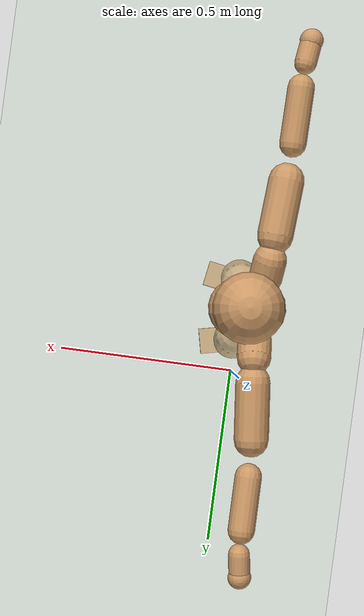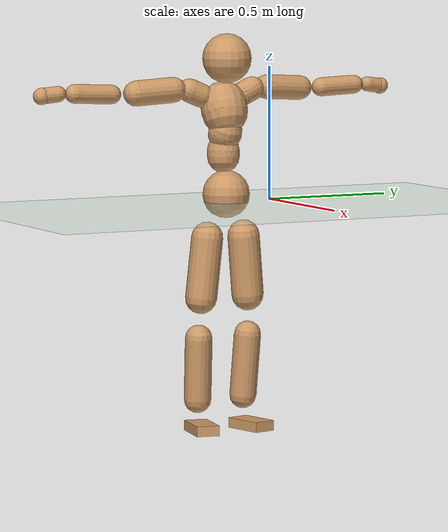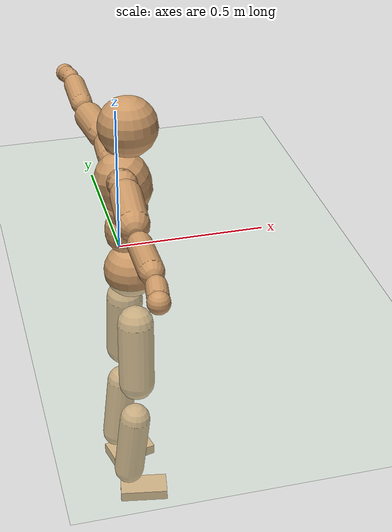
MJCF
<mujoco model="humanoid">
  <compiler coordinate="local"/>
  <default>
    <joint damping="0.0" armature="0.01" stiffness="0.0" limited="true"/>
    <geom conaffinity="1" condim="3" contype="7" margin="0.001" rgba="0.8 0.6 .4 1"/>
  </default>
  <asset>
    <texture type="skybox" builtin="gradient" rgb1=".4 .5 .6" rgb2="0 0 0" width="100" height="100"/>
    <texture builtin="flat" height="1278" mark="cross" markrgb="1 1 1" name="texgeom" random="0.01" rgb1="0.8 0.6 0.4" rgb2="0.8 0.6 0.4" type="cube" width="127"/>
    <texture builtin="checker" height="100" name="texplane" rgb1="0 0 0" rgb2="0.8 0.8 0.8" type="2d" width="100"/>
    <material name="MatPlane" reflectance="0.5" shininess="1" specular="1" texrepeat="60 60" texture="texplane"/>
    <material name="geom" texture="texgeom" texuniform="true"/>
  </asset>
  <worldbody>
    <light cutoff="100" diffuse="1 1 1" dir="-0 0 -1.3" directional="true" exponent="1" pos="0 0 1.3" specular=".1 .1 .1"/>
    <geom conaffinity="1" condim="3" name="floor" pos="0 0 0" rgba="0.8 0.9 0.8 1" size="100 100 .2" type="plane" material="MatPlane"/>
    <body name="Pelvis" pos="0.001 -0.1838 0.0271">
      <freejoint name="Pelvis"/>
      <geom type="sphere" contype="1" conaffinity="1" density="500" size="0.0892" pos="0.0000 0.0000 0.0000" name="Pelvis"/>
      <body name="L_Hip" pos="-0.0079 0.072 -0.0861">
        <joint name="L_Hip_x" type="hinge" pos="0 0 0" axis="1 0 0" stiffness="800" damping="80" armature="0.02" range="-180.0000 180.0000"/>
        <joint name="L_Hip_y" type="hinge" pos="0 0 0" axis="0 1 0" stiffness="800" damping="80" armature="0.02" range="-180.0000 180.0000"/>
        <joint name="L_Hip_z" type="hinge" pos="0 0 0" axis="0 0 1" stiffness="800" damping="80" armature="0.02" range="-180.0000 180.0000"/>
        <geom type="capsule" contype="1" conaffinity="1" density="500" fromto="-0.0013 0.0065 -0.0750 -0.0051 0.0260 -0.2999" size="0.0604" name="L_Hip"/>
        <body name="L_Knee" pos="-0.0064 0.0325 -0.3748">
          <joint name="L_Knee_x" type="hinge" pos="0 0 0" axis="1 0 0" stiffness="800" damping="80" armature="0.02" range="-180.0000 180.0000"/>
          <joint name="L_Knee_y" type="hinge" pos="0 0 0" axis="0 1 0" stiffness="800" damping="80" armature="0.02" range="-180.0000 180.0000"/>
          <joint name="L_Knee_z" type="hinge" pos="0 0 0" axis="0 0 1" stiffness="800" damping="80" armature="0.02" range="-180.0000 180.0000"/>
          <geom type="capsule" contype="1" conaffinity="1" density="500" fromto="-0.0085 -0.0019 -0.0783 -0.0339 -0.0076 -0.3132" size="0.0509" name="L_Knee"/>
          <body name="L_Ankle" pos="-0.0423 -0.0095 -0.3915">
            <joint name="L_Ankle_x" type="hinge" pos="0 0 0" axis="1 0 0" stiffness="800" damping="80" armature="0.02" range="-180.0000 180.0000"/>
            <joint name="L_Ankle_y" type="hinge" pos="0 0 0" axis="0 1 0" stiffness="800" damping="80" armature="0.02" range="-180.0000 180.0000"/>
            <joint name="L_Ankle_z" type="hinge" pos="0 0 0" axis="0 0 1" stiffness="800" damping="80" armature="0.02" range="-180.0000 180.0000"/>
            <geom type="box" contype="1" conaffinity="1" density="500" pos="0.0559 0.0124 -0.0280" size="0.0805 0.0441 0.0191" quat="0.9940 0.0000 0.0000 0.1090" name="L_Ankle"/>
            <body name="L_Toe" pos="0.1118 0.0248 -0.056">
              <joint name="L_Toe_x" type="hinge" pos="0 0 0" axis="1 0 0" stiffness="500" damping="50" armature="0.02" range="-180.0000 180.0000"/>
              <joint name="L_Toe_y" type="hinge" pos="0 0 0" axis="0 1 0" stiffness="500" damping="50" armature="0.02" range="-180.0000 180.0000"/>
              <joint name="L_Toe_z" type="hinge" pos="0 0 0" axis="0 0 1" stiffness="500" damping="50" armature="0.02" range="-180.0000 180.0000"/>
              <geom type="box" contype="1" conaffinity="1" density="500" pos="0.0000 0.0000 0.0281" size="0.0009 0.0022 0.001" quat="0.9933 0.0000 0.0000 0.1155" name="L_Toe"/>
            </body>
          </body>
        </body>
      </body>
      <body name="R_Hip" pos="-0.0044 -0.069 -0.0857">
        <joint name="R_Hip_x" type="hinge" pos="0 0 0" axis="1 0 0" stiffness="800" damping="80" armature="0.02" range="-180.0000 180.0000"/>
        <joint name="R_Hip_y" type="hinge" pos="0 0 0" axis="0 1 0" stiffness="800" damping="80" armature="0.02" range="-180.0000 180.0000"/>
        <joint name="R_Hip_z" type="hinge" pos="0 0 0" axis="0 0 1" stiffness="800" damping="80" armature="0.02" range="-180.0000 180.0000"/>
        <geom type="capsule" contype="1" conaffinity="1" density="500" fromto="-0.0016 -0.0078 -0.0757 -0.0063 -0.0311 -0.3027" size="0.0597" name="R_Hip"/>
        <body name="R_Knee" pos="-0.0079 -0.0389 -0.3783">
          <joint name="R_Knee_x" type="hinge" pos="0 0 0" axis="1 0 0" stiffness="800" damping="80" armature="0.02" range="-180.0000 180.0000"/>
          <joint name="R_Knee_y" type="hinge" pos="0 0 0" axis="0 1 0" stiffness="800" damping="80" armature="0.02" range="-180.0000 180.0000"/>
          <joint name="R_Knee_z" type="hinge" pos="0 0 0" axis="0 0 1" stiffness="800" damping="80" armature="0.02" range="-180.0000 180.0000"/>
          <geom type="capsule" contype="1" conaffinity="1" density="500" fromto="-0.0082 0.0024 -0.0783 -0.0327 0.0098 -0.3130" size="0.0515" name="R_Knee"/>
          <body name="R_Ankle" pos="-0.0408 0.0122 -0.3913">
            <joint name="R_Ankle_x" type="hinge" pos="0 0 0" axis="1 0 0" stiffness="800" damping="80" armature="0.02" range="-180.0000 180.0000"/>
            <joint name="R_Ankle_y" type="hinge" pos="0 0 0" axis="0 1 0" stiffness="800" damping="80" armature="0.02" range="-180.0000 180.0000"/>
            <joint name="R_Ankle_z" type="hinge" pos="0 0 0" axis="0 0 1" stiffness="800" damping="80" armature="0.02" range="-180.0000 180.0000"/>
            <geom type="box" contype="1" conaffinity="1" density="500" pos="0.0577 -0.0098 -0.0235" size="0.0822 0.0434 0.0192" quat="0.9965 0.0000 0.0000 -0.0841" name="R_Ankle"/>
            <body name="R_Toe" pos="0.1153 -0.0196 -0.0469">
              <joint name="R_Toe_x" type="hinge" pos="0 0 0" axis="1 0 0" stiffness="500" damping="50" armature="0.02" range="-180.0000 180.0000"/>
              <joint name="R_Toe_y" type="hinge" pos="0 0 0" axis="0 1 0" stiffness="500" damping="50" armature="0.02" range="-180.0000 180.0000"/>
              <joint name="R_Toe_z" type="hinge" pos="0 0 0" axis="0 0 1" stiffness="500" damping="50" armature="0.02" range="-180.0000 180.0000"/>
              <geom type="box" contype="1" conaffinity="1" density="500" pos="0.0000 0.0000 0.0262" size="0.0008 0.0022 0.0011" quat="0.9972 0.0000 0.0000 -0.0744" name="R_Toe"/>
            </body>
          </body>
        </body>
      </body>
      <body name="Torso" pos="-0.0173 -0.0024 0.0955">
        <joint name="Torso_x" type="hinge" pos="0 0 0" axis="1 0 0" stiffness="1000" damping="100" armature="0.02" range="-180.0000 180.0000"/>
        <joint name="Torso_y" type="hinge" pos="0 0 0" axis="0 1 0" stiffness="1000" damping="100" armature="0.02" range="-180.0000 180.0000"/>
        <joint name="Torso_z" type="hinge" pos="0 0 0" axis="0 0 1" stiffness="1000" damping="100" armature="0.02" range="-180.0000 180.0000"/>
        <geom type="capsule" contype="1" conaffinity="1" density="500" fromto="-0.0027 0.0008 0.0678 -0.0018 0.0005 0.0452" size="0.0619" name="Torso"/>
        <body name="Spine" pos="-0.0045 0.0013 0.113">
          <joint name="Spine_x" type="hinge" pos="0 0 0" axis="1 0 0" stiffness="1000" damping="100" armature="0.02" range="-180.0000 180.0000"/>
          <joint name="Spine_y" type="hinge" pos="0 0 0" axis="0 1 0" stiffness="1000" damping="100" armature="0.02" range="-180.0000 180.0000"/>
          <joint name="Spine_z" type="hinge" pos="0 0 0" axis="0 0 1" stiffness="1000" damping="100" armature="0.02" range="-180.0000 180.0000"/>
          <geom type="capsule" contype="1" conaffinity="1" density="500" fromto="0.0159 0.0013 0.0255 0.0106 0.0009 0.0170" size="0.0635" name="Spine"/>
          <body name="Chest" pos="0.0265 0.0021 0.0425">
            <joint name="Chest_x" type="hinge" pos="0 0 0" axis="1 0 0" stiffness="1000" damping="100" armature="0.02" range="-180.0000 180.0000"/>
            <joint name="Chest_y" type="hinge" pos="0 0 0" axis="0 1 0" stiffness="1000" damping="100" armature="0.02" range="-180.0000 180.0000"/>
            <joint name="Chest_z" type="hinge" pos="0 0 0" axis="0 0 1" stiffness="1000" damping="100" armature="0.02" range="-180.0000 180.0000"/>
            <geom type="capsule" contype="1" conaffinity="1" density="500" fromto="-0.0270 -0.0004 0.0845 -0.0180 -0.0002 0.0564" size="0.0872" name="Chest"/>
            <body name="Neck" pos="-0.052 -0.0008 0.1991">
              <joint name="Neck_x" type="hinge" pos="0 0 0" axis="1 0 0" stiffness="500" damping="50" armature="0.02" range="-180.0000 180.0000"/>
              <joint name="Neck_y" type="hinge" pos="0 0 0" axis="0 1 0" stiffness="500" damping="50" armature="0.02" range="-180.0000 180.0000"/>
              <joint name="Neck_z" type="hinge" pos="0 0 0" axis="0 0 1" stiffness="500" damping="50" armature="0.02" range="-180.0000 180.0000"/>
              <geom type="capsule" contype="1" conaffinity="1" density="500" fromto="0.0095 0.0005 0.0117 0.0382 0.0021 0.0469" size="0.0372" name="Neck"/>
              <body name="Head" pos="0.0477 0.0027 0.0586">
                <joint name="Head_x" type="hinge" pos="0 0 0" axis="1 0 0" stiffness="500" damping="50" armature="0.02" range="-180.0000 180.0000"/>
                <joint name="Head_y" type="hinge" pos="0 0 0" axis="0 1 0" stiffness="500" damping="50" armature="0.02" range="-180.0000 180.0000"/>
                <joint name="Head_z" type="hinge" pos="0 0 0" axis="0 0 1" stiffness="500" damping="50" armature="0.02" range="-180.0000 180.0000"/>
                <geom type="sphere" contype="1" conaffinity="1" density="500" size="0.0929" pos="0.0000 0.0000 0.0000" name="Head"/>
              </body>
            </body>
            <body name="L_Thorax" pos="-0.0391 0.0672 0.1123">
              <joint name="L_Thorax_x" type="hinge" pos="0 0 0" axis="1 0 0" stiffness="500" damping="50" armature="0.02" range="-180.0000 180.0000"/>
              <joint name="L_Thorax_y" type="hinge" pos="0 0 0" axis="0 1 0" stiffness="500" damping="50" armature="0.02" range="-180.0000 180.0000"/>
              <joint name="L_Thorax_z" type="hinge" pos="0 0 0" axis="0 0 1" stiffness="500" damping="50" armature="0.02" range="-180.0000 180.0000"/>
              <geom type="capsule" contype="1" conaffinity="1" density="500" fromto="-0.0006 0.0150 0.0068 -0.0026 0.0600 0.0271" size="0.0454" name="L_Thorax"/>
              <body name="L_Shoulder" pos="-0.0032 0.075 0.0339">
                <joint name="L_Shoulder_x" type="hinge" pos="0 0 0" axis="1 0 0" stiffness="500" damping="50" armature="0.02" range="-720.0000 720.0000"/>
                <joint name="L_Shoulder_y" type="hinge" pos="0 0 0" axis="0 1 0" stiffness="500" damping="50" armature="0.02" range="-720.0000 720.0000"/>
                <joint name="L_Shoulder_z" type="hinge" pos="0 0 0" axis="0 0 1" stiffness="500" damping="50" armature="0.02" range="-720.0000 720.0000"/>
                <geom type="capsule" contype="1" conaffinity="1" density="500" fromto="-0.0053 0.0500 -0.0027 -0.0213 0.2002 -0.0106" size="0.0463" name="L_Shoulder"/>
                <body name="L_Elbow" pos="-0.0266 0.2502 -0.0133">
                  <joint name="L_Elbow_x" type="hinge" pos="0 0 0" axis="1 0 0" stiffness="500" damping="50" armature="0.02" range="-720.0000 720.0000"/>
                  <joint name="L_Elbow_y" type="hinge" pos="0 0 0" axis="0 1 0" stiffness="500" damping="50" armature="0.02" range="-720.0000 720.0000"/>
                  <joint name="L_Elbow_z" type="hinge" pos="0 0 0" axis="0 0 1" stiffness="500" damping="50" armature="0.02" range="-720.0000 720.0000"/>
                  <geom type="capsule" contype="1" conaffinity="1" density="500" fromto="0.0000 0.0474 0.0020 0.0000 0.1897 0.0080" size="0.0357" name="L_Elbow"/>
                  <body name="L_Wrist" pos="0 0.2371 0.0099">
                    <joint name="L_Wrist_x" type="hinge" pos="0 0 0" axis="1 0 0" stiffness="300" damping="30" armature="0.02" range="-180.0000 180.0000"/>
                    <joint name="L_Wrist_y" type="hinge" pos="0 0 0" axis="0 1 0" stiffness="300" damping="30" armature="0.02" range="-180.0000 180.0000"/>
                    <joint name="L_Wrist_z" type="hinge" pos="0 0 0" axis="0 0 1" stiffness="300" damping="30" armature="0.02" range="-180.0000 180.0000"/>
                    <geom type="capsule" contype="1" conaffinity="1" density="500" fromto="-0.0024 0.0154 -0.0022 -0.0097 0.0615 -0.0090" size="0.0286" name="L_Wrist"/>
                    <body name="L_Hand" pos="-0.0121 0.0769 -0.0112">
                      <joint name="L_Hand_x" type="hinge" pos="0 0 0" axis="1 0 0" stiffness="300" damping="30" armature="0.02" range="-180.0000 180.0000"/>
                      <joint name="L_Hand_y" type="hinge" pos="0 0 0" axis="0 1 0" stiffness="300" damping="30" armature="0.02" range="-180.0000 180.0000"/>
                      <joint name="L_Hand_z" type="hinge" pos="0 0 0" axis="0 0 1" stiffness="300" damping="30" armature="0.02" range="-180.0000 180.0000"/>
                      <geom type="sphere" contype="1" conaffinity="1" density="500" size="0.0311" pos="0.0000 0.0000 0.0000" name="L_Hand"/>
                    </body>
                  </body>
                </body>
              </body>
            </body>
            <body name="R_Thorax" pos="-0.0439 -0.0682 0.1112">
              <joint name="R_Thorax_x" type="hinge" pos="0 0 0" axis="1 0 0" stiffness="500" damping="50" armature="0.02" range="-180.0000 180.0000"/>
              <joint name="R_Thorax_y" type="hinge" pos="0 0 0" axis="0 1 0" stiffness="500" damping="50" armature="0.02" range="-180.0000 180.0000"/>
              <joint name="R_Thorax_z" type="hinge" pos="0 0 0" axis="0 0 1" stiffness="500" damping="50" armature="0.02" range="-180.0000 180.0000"/>
              <geom type="capsule" contype="1" conaffinity="1" density="500" fromto="-0.0015 -0.0157 0.0069 -0.0059 -0.0630 0.0275" size="0.0449" name="R_Thorax"/>
              <body name="R_Shoulder" pos="-0.0073 -0.0787 0.0344">
                <joint name="R_Shoulder_x" type="hinge" pos="0 0 0" axis="1 0 0" stiffness="500" damping="50" armature="0.02" range="-720.0000 720.0000"/>
                <joint name="R_Shoulder_y" type="hinge" pos="0 0 0" axis="0 1 0" stiffness="500" damping="50" armature="0.02" range="-720.0000 720.0000"/>
                <joint name="R_Shoulder_z" type="hinge" pos="0 0 0" axis="0 0 1" stiffness="500" damping="50" armature="0.02" range="-720.0000 720.0000"/>
                <geom type="capsule" contype="1" conaffinity="1" density="500" fromto="-0.0036 -0.0495 -0.0032 -0.0143 -0.1979 -0.0129" size="0.0478" name="R_Shoulder"/>
                <body name="R_Elbow" pos="-0.0179 -0.2473 -0.0161">
                  <joint name="R_Elbow_x" type="hinge" pos="0 0 0" axis="1 0 0" stiffness="500" damping="50" armature="0.02" range="-720.0000 720.0000"/>
                  <joint name="R_Elbow_y" type="hinge" pos="0 0 0" axis="0 1 0" stiffness="500" damping="50" armature="0.02" range="-720.0000 720.0000"/>
                  <joint name="R_Elbow_z" type="hinge" pos="0 0 0" axis="0 0 1" stiffness="500" damping="50" armature="0.02" range="-720.0000 720.0000"/>
                  <geom type="capsule" contype="1" conaffinity="1" density="500" fromto="-0.0006 -0.0495 0.0022 -0.0022 -0.1980 0.0089" size="0.0357" name="R_Elbow"/>
                  <body name="R_Wrist" pos="-0.0028 -0.2474 0.0112">
                    <joint name="R_Wrist_x" type="hinge" pos="0 0 0" axis="1 0 0" stiffness="300" damping="30" armature="0.02" range="-180.0000 180.0000"/>
                    <joint name="R_Wrist_y" type="hinge" pos="0 0 0" axis="0 1 0" stiffness="300" damping="30" armature="0.02" range="-180.0000 180.0000"/>
                    <joint name="R_Wrist_z" type="hinge" pos="0 0 0" axis="0 0 1" stiffness="300" damping="30" armature="0.02" range="-180.0000 180.0000"/>
                    <geom type="capsule" contype="1" conaffinity="1" density="500" fromto="-0.0022 -0.0157 -0.0017 -0.0086 -0.0628 -0.0067" size="0.0296" name="R_Wrist"/>
                    <body name="R_Hand" pos="-0.0108 -0.0785 -0.0084">
                      <joint name="R_Hand_x" type="hinge" pos="0 0 0" axis="1 0 0" stiffness="300" damping="30" armature="0.02" range="-180.0000 180.0000"/>
                      <joint name="R_Hand_y" type="hinge" pos="0 0 0" axis="0 1 0" stiffness="300" damping="30" armature="0.02" range="-180.0000 180.0000"/>
                      <joint name="R_Hand_z" type="hinge" pos="0 0 0" axis="0 0 1" stiffness="300" damping="30" armature="0.02" range="-180.0000 180.0000"/>
                      <geom type="sphere" contype="1" conaffinity="1" density="500" size="0.0315" pos="0.0000 0.0000 0.0000" name="R_Hand"/>
                    </body>
                  </body>
                </body>
              </body>
            </body>
          </body>
        </body>
      </body>
    </body>
  </worldbody>
  <actuator>
    <motor name="L_Hip_x" joint="L_Hip_x" gear="500"/>
    <motor name="L_Hip_y" joint="L_Hip_y" gear="500"/>
    <motor name="L_Hip_z" joint="L_Hip_z" gear="500"/>
    <motor name="L_Knee_x" joint="L_Knee_x" gear="500"/>
    <motor name="L_Knee_y" joint="L_Knee_y" gear="500"/>
    <motor name="L_Knee_z" joint="L_Knee_z" gear="500"/>
    <motor name="L_Ankle_x" joint="L_Ankle_x" gear="500"/>
    <motor name="L_Ankle_y" joint="L_Ankle_y" gear="500"/>
    <motor name="L_Ankle_z" joint="L_Ankle_z" gear="500"/>
    <motor name="L_Toe_x" joint="L_Toe_x" gear="500"/>
    <motor name="L_Toe_y" joint="L_Toe_y" gear="500"/>
    <motor name="L_Toe_z" joint="L_Toe_z" gear="500"/>
    <motor name="R_Hip_x" joint="R_Hip_x" gear="500"/>
    <motor name="R_Hip_y" joint="R_Hip_y" gear="500"/>
    <motor name="R_Hip_z" joint="R_Hip_z" gear="500"/>
    <motor name="R_Knee_x" joint="R_Knee_x" gear="500"/>
    <motor name="R_Knee_y" joint="R_Knee_y" gear="500"/>
    <motor name="R_Knee_z" joint="R_Knee_z" gear="500"/>
    <motor name="R_Ankle_x" joint="R_Ankle_x" gear="500"/>
    <motor name="R_Ankle_y" joint="R_Ankle_y" gear="500"/>
    <motor name="R_Ankle_z" joint="R_Ankle_z" gear="500"/>
    <motor name="R_Toe_x" joint="R_Toe_x" gear="500"/>
    <motor name="R_Toe_y" joint="R_Toe_y" gear="500"/>
    <motor name="R_Toe_z" joint="R_Toe_z" gear="500"/>
    <motor name="Torso_x" joint="Torso_x" gear="500"/>
    <motor name="Torso_y" joint="Torso_y" gear="500"/>
    <motor name="Torso_z" joint="Torso_z" gear="500"/>
    <motor name="Spine_x" joint="Spine_x" gear="500"/>
    <motor name="Spine_y" joint="Spine_y" gear="500"/>
    <motor name="Spine_z" joint="Spine_z" gear="500"/>
    <motor name="Chest_x" joint="Chest_x" gear="500"/>
    <motor name="Chest_y" joint="Chest_y" gear="500"/>
    <motor name="Chest_z" joint="Chest_z" gear="500"/>
    <motor name="Neck_x" joint="Neck_x" gear="500"/>
    <motor name="Neck_y" joint="Neck_y" gear="500"/>
    <motor name="Neck_z" joint="Neck_z" gear="500"/>
    <motor name="Head_x" joint="Head_x" gear="500"/>
    <motor name="Head_y" joint="Head_y" gear="500"/>
    <motor name="Head_z" joint="Head_z" gear="500"/>
    <motor name="L_Thorax_x" joint="L_Thorax_x" gear="500"/>
    <motor name="L_Thorax_y" joint="L_Thorax_y" gear="500"/>
    <motor name="L_Thorax_z" joint="L_Thorax_z" gear="500"/>
    <motor name="L_Shoulder_x" joint="L_Shoulder_x" gear="500"/>
    <motor name="L_Shoulder_y" joint="L_Shoulder_y" gear="500"/>
    <motor name="L_Shoulder_z" joint="L_Shoulder_z" gear="500"/>
    <motor name="L_Elbow_x" joint="L_Elbow_x" gear="500"/>
    <motor name="L_Elbow_y" joint="L_Elbow_y" gear="500"/>
    <motor name="L_Elbow_z" joint="L_Elbow_z" gear="500"/>
    <motor name="L_Wrist_x" joint="L_Wrist_x" gear="500"/>
    <motor name="L_Wrist_y" joint="L_Wrist_y" gear="500"/>
    <motor name="L_Wrist_z" joint="L_Wrist_z" gear="500"/>
    <motor name="L_Hand_x" joint="L_Hand_x" gear="500"/>
    <motor name="L_Hand_y" joint="L_Hand_y" gear="500"/>
    <motor name="L_Hand_z" joint="L_Hand_z" gear="500"/>
    <motor name="R_Thorax_x" joint="R_Thorax_x" gear="500"/>
    <motor name="R_Thorax_y" joint="R_Thorax_y" gear="500"/>
    <motor name="R_Thorax_z" joint="R_Thorax_z" gear="500"/>
    <motor name="R_Shoulder_x" joint="R_Shoulder_x" gear="500"/>
    <motor name="R_Shoulder_y" joint="R_Shoulder_y" gear="500"/>
    <motor name="R_Shoulder_z" joint="R_Shoulder_z" gear="500"/>
    <motor name="R_Elbow_x" joint="R_Elbow_x" gear="500"/>
    <motor name="R_Elbow_y" joint="R_Elbow_y" gear="500"/>
    <motor name="R_Elbow_z" joint="R_Elbow_z" gear="500"/>
    <motor name="R_Wrist_x" joint="R_Wrist_x" gear="500"/>
    <motor name="R_Wrist_y" joint="R_Wrist_y" gear="500"/>
    <motor name="R_Wrist_z" joint="R_Wrist_z" gear="500"/>
    <motor name="R_Hand_x" joint="R_Hand_x" gear="500"/>
    <motor name="R_Hand_y" joint="R_Hand_y" gear="500"/>
    <motor name="R_Hand_z" joint="R_Hand_z" gear="500"/>
  </actuator>
  <contact>
    <exclude body1="Torso" body2="Chest"/>
    <exclude body1="Head" body2="Chest"/>
    <exclude body1="R_Knee" body2="R_Toe"/>
    <exclude body1="R_Knee" body2="L_Ankle"/>
    <exclude body1="R_Knee" body2="L_Toe"/>
    <exclude body1="L_Knee" body2="L_Toe"/>
    <exclude body1="L_Knee" body2="R_Ankle"/>
    <exclude body1="L_Knee" body2="R_Toe"/>
    <exclude body1="L_Shoulder" body2="Chest"/>
    <exclude body1="R_Shoulder" body2="Chest"/>
  </contact>
  <sensor/>
  <size njmax="700" nconmax="700"/>
</mujoco>
